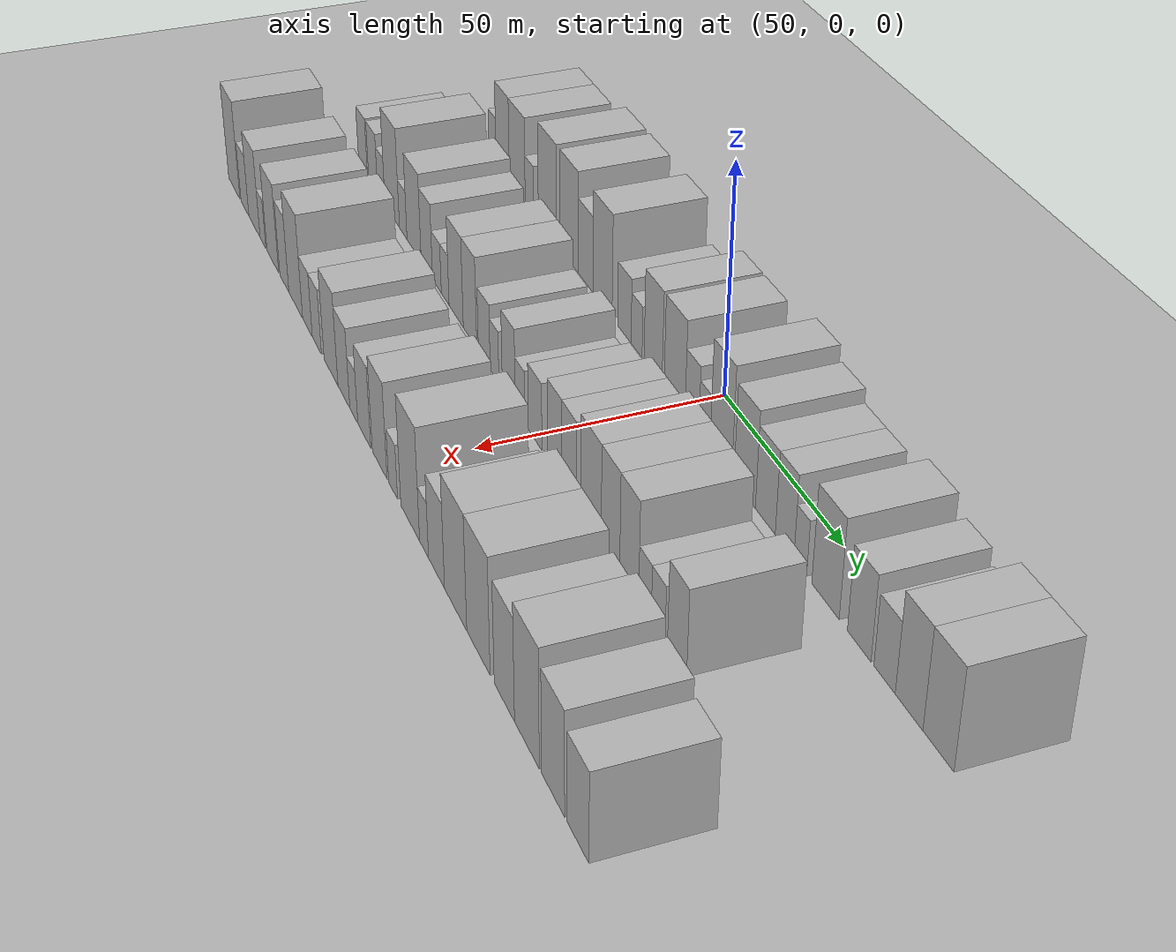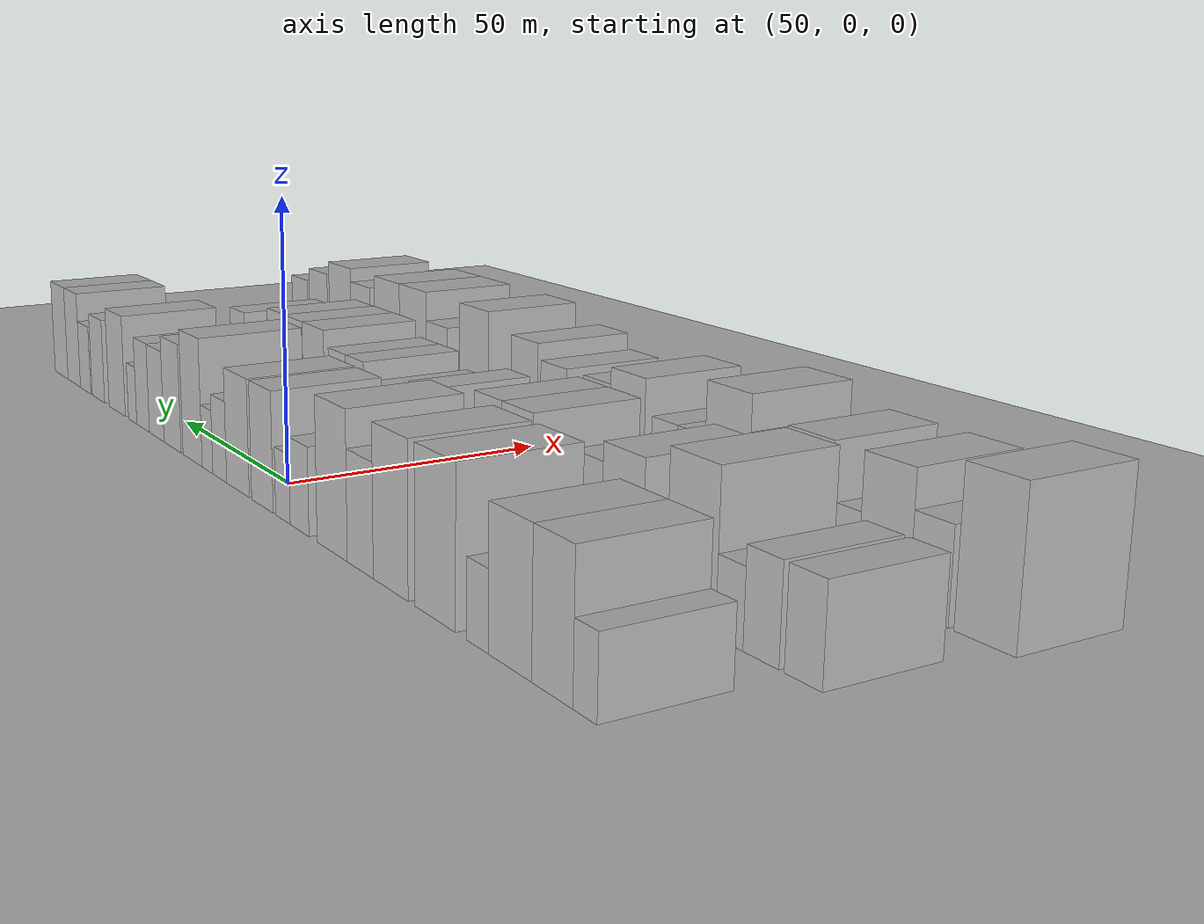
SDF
<sdf version="1.6">
 <world name="default">
  <include><name>ground_plane_1</name><uri>model://HANNAS_ground_plane</uri></include>
  <include>
   <name>ground_plane_2</name>
   <uri>model://HANNAS_ground_plane</uri>
   <pose>100 0 0  0 0 0</pose>
  </include>
  <model name="building_21">
   <static>1</static>
   <pose>50.0000 -107.4695 0 0.000000 0.000000 0.000000</pose>
   <link name="link">
    <pose>0 0 6.00 0 0 0</pose>
    <collision name="collision"><geometry><box><size>20.0000 5.0677 12.0000</size></box></geometry></collision>
    <visual name="visual">
     <cast_shadows>0</cast_shadows>
     <geometry><box><size>20.0000 5.0677 12.0000</size></box></geometry>
     <material>
      <script>
       <uri>model://HANNAS_wall/materials/scripts</uri>
       <uri>model://HANNAS_wall/materials/textures</uri>
       <name>vrc/HANNAS_wall</name>
      </script>
     </material>
    </visual>
   </link>
  </model>
  <model name="building_22">
   <static>1</static>
   <pose>50.0000 -100.3512 0 0.000000 0.000000 0.000000</pose>
   <link name="link">
    <pose>0 0 10.50 0 0 0</pose>
    <collision name="collision"><geometry><box><size>20.0000 9.1690 21.0000</size></box></geometry></collision>
    <visual name="visual">
     <cast_shadows>0</cast_shadows>
     <geometry><box><size>20.0000 9.1690 21.0000</size></box></geometry>
     <material>
      <script>
       <uri>model://HANNAS_wall/materials/scripts</uri>
       <uri>model://HANNAS_wall/materials/textures</uri>
       <name>vrc/HANNAS_wall</name>
      </script>
     </material>
    </visual>
   </link>
  </model>
  <model name="building_23">
   <static>1</static>
   <pose>50.0000 -90.5376 0 0.000000 0.000000 0.000000</pose>
   <link name="link">
    <pose>0 0 10.50 0 0 0</pose>
    <collision name="collision"><geometry><box><size>20.0000 10.4582 21.0000</size></box></geometry></collision>
    <visual name="visual">
     <cast_shadows>0</cast_shadows>
     <geometry><box><size>20.0000 10.4582 21.0000</size></box></geometry>
     <material>
      <script>
       <uri>model://HANNAS_wall/materials/scripts</uri>
       <uri>model://HANNAS_wall/materials/textures</uri>
       <name>vrc/HANNAS_wall</name>
      </script>
     </material>
    </visual>
   </link>
  </model>
  <model name="building_24">
   <static>1</static>
   <pose>50.0000 -82.5647 0 0.000000 0.000000 0.000000</pose>
   <link name="link">
    <pose>0 0 6.00 0 0 0</pose>
    <collision name="collision"><geometry><box><size>20.0000 5.4877 12.0000</size></box></geometry></collision>
    <visual name="visual">
     <cast_shadows>0</cast_shadows>
     <geometry><box><size>20.0000 5.4877 12.0000</size></box></geometry>
     <material>
      <script>
       <uri>model://HANNAS_wall/materials/scripts</uri>
       <uri>model://HANNAS_wall/materials/textures</uri>
       <name>vrc/HANNAS_wall</name>
      </script>
     </material>
    </visual>
   </link>
  </model>
  <model name="building_25">
   <static>1</static>
   <pose>50.0000 -71.1308 0 0.000000 0.000000 0.000000</pose>
   <link name="link">
    <pose>0 0 12.00 0 0 0</pose>
    <collision name="collision"><geometry><box><size>20.0000 11.3801 24.0000</size></box></geometry></collision>
    <visual name="visual">
     <cast_shadows>0</cast_shadows>
     <geometry><box><size>20.0000 11.3801 24.0000</size></box></geometry>
     <material>
      <script>
       <uri>model://HANNAS_wall/materials/scripts</uri>
       <uri>model://HANNAS_wall/materials/textures</uri>
       <name>vrc/HANNAS_wall</name>
      </script>
     </material>
    </visual>
   </link>
  </model>
  <model name="building_26">
   <static>1</static>
   <pose>50.0000 -58.0494 0 0.000000 0.000000 0.000000</pose>
   <link name="link">
    <pose>0 0 12.00 0 0 0</pose>
    <collision name="collision"><geometry><box><size>20.0000 10.7825 24.0000</size></box></geometry></collision>
    <visual name="visual">
     <cast_shadows>0</cast_shadows>
     <geometry><box><size>20.0000 10.7825 24.0000</size></box></geometry>
     <material>
      <script>
       <uri>model://HANNAS_wall/materials/scripts</uri>
       <uri>model://HANNAS_wall/materials/textures</uri>
       <name>vrc/HANNAS_wall</name>
      </script>
     </material>
    </visual>
   </link>
  </model>
  <model name="building_27">
   <static>1</static>
   <pose>50.0000 -48.3660 0 0.000000 0.000000 0.000000</pose>
   <link name="link">
    <pose>0 0 9.00 0 0 0</pose>
    <collision name="collision"><geometry><box><size>20.0000 8.5843 18.0000</size></box></geometry></collision>
    <visual name="visual">
     <cast_shadows>0</cast_shadows>
     <geometry><box><size>20.0000 8.5843 18.0000</size></box></geometry>
     <material>
      <script>
       <uri>model://HANNAS_wall/materials/scripts</uri>
       <uri>model://HANNAS_wall/materials/textures</uri>
       <name>vrc/HANNAS_wall</name>
      </script>
     </material>
    </visual>
   </link>
  </model>
  <model name="building_28">
   <static>1</static>
   <pose>50.0000 -38.7281 0 0.000000 0.000000 0.000000</pose>
   <link name="link">
    <pose>0 0 12.00 0 0 0</pose>
    <collision name="collision"><geometry><box><size>20.0000 10.6915 24.0000</size></box></geometry></collision>
    <visual name="visual">
     <cast_shadows>0</cast_shadows>
     <geometry><box><size>20.0000 10.6915 24.0000</size></box></geometry>
     <material>
      <script>
       <uri>model://HANNAS_wall/materials/scripts</uri>
       <uri>model://HANNAS_wall/materials/textures</uri>
       <name>vrc/HANNAS_wall</name>
      </script>
     </material>
    </visual>
   </link>
  </model>
  <model name="building_29">
   <static>1</static>
   <pose>50.0000 -26.8034 0 0.000000 0.000000 0.000000</pose>
   <link name="link">
    <pose>0 0 7.50 0 0 0</pose>
    <collision name="collision"><geometry><box><size>20.0000 7.1579 15.0000</size></box></geometry></collision>
    <visual name="visual">
     <cast_shadows>0</cast_shadows>
     <geometry><box><size>20.0000 7.1579 15.0000</size></box></geometry>
     <material>
      <script>
       <uri>model://HANNAS_wall/materials/scripts</uri>
       <uri>model://HANNAS_wall/materials/textures</uri>
       <name>vrc/HANNAS_wall</name>
      </script>
     </material>
    </visual>
   </link>
  </model>
  <model name="building_30">
   <static>1</static>
   <pose>50.0000 -20.3374 0 0.000000 0.000000 0.000000</pose>
   <link name="link">
    <pose>0 0 6.00 0 0 0</pose>
    <collision name="collision"><geometry><box><size>20.0000 5.7741 12.0000</size></box></geometry></collision>
    <visual name="visual">
     <cast_shadows>0</cast_shadows>
     <geometry><box><size>20.0000 5.7741 12.0000</size></box></geometry>
     <material>
      <script>
       <uri>model://HANNAS_wall/materials/scripts</uri>
       <uri>model://HANNAS_wall/materials/textures</uri>
       <name>vrc/HANNAS_wall</name>
      </script>
     </material>
    </visual>
   </link>
  </model>
  <model name="building_31">
   <static>1</static>
   <pose>50.0000 -11.9085 0 0.000000 0.000000 0.000000</pose>
   <link name="link">
    <pose>0 0 10.50 0 0 0</pose>
    <collision name="collision"><geometry><box><size>20.0000 9.0835 21.0000</size></box></geometry></collision>
    <visual name="visual">
     <cast_shadows>0</cast_shadows>
     <geometry><box><size>20.0000 9.0835 21.0000</size></box></geometry>
     <material>
      <script>
       <uri>model://HANNAS_wall/materials/scripts</uri>
       <uri>model://HANNAS_wall/materials/textures</uri>
       <name>vrc/HANNAS_wall</name>
      </script>
     </material>
    </visual>
   </link>
  </model>
  <model name="building_32">
   <static>1</static>
   <pose>50.0000 -1.2948 0 0.000000 0.000000 0.000000</pose>
   <link name="link">
    <pose>0 0 10.50 0 0 0</pose>
    <collision name="collision"><geometry><box><size>20.0000 10.1440 21.0000</size></box></geometry></collision>
    <visual name="visual">
     <cast_shadows>0</cast_shadows>
     <geometry><box><size>20.0000 10.1440 21.0000</size></box></geometry>
     <material>
      <script>
       <uri>model://HANNAS_wall/materials/scripts</uri>
       <uri>model://HANNAS_wall/materials/textures</uri>
       <name>vrc/HANNAS_wall</name>
      </script>
     </material>
    </visual>
   </link>
  </model>
  <model name="building_33">
   <static>1</static>
   <pose>50.0000 7.0367 0 0.000000 0.000000 0.000000</pose>
   <link name="link">
    <pose>0 0 7.50 0 0 0</pose>
    <collision name="collision"><geometry><box><size>20.0000 6.5191 15.0000</size></box></geometry></collision>
    <visual name="visual">
     <cast_shadows>0</cast_shadows>
     <geometry><box><size>20.0000 6.5191 15.0000</size></box></geometry>
     <material>
      <script>
       <uri>model://HANNAS_wall/materials/scripts</uri>
       <uri>model://HANNAS_wall/materials/textures</uri>
       <name>vrc/HANNAS_wall</name>
      </script>
     </material>
    </visual>
   </link>
  </model>
  <model name="building_34">
   <static>1</static>
   <pose>50.0000 12.8875 0 0.000000 0.000000 0.000000</pose>
   <link name="link">
    <pose>0 0 6.00 0 0 0</pose>
    <collision name="collision"><geometry><box><size>20.0000 5.1826 12.0000</size></box></geometry></collision>
    <visual name="visual">
     <cast_shadows>0</cast_shadows>
     <geometry><box><size>20.0000 5.1826 12.0000</size></box></geometry>
     <material>
      <script>
       <uri>model://HANNAS_wall/materials/scripts</uri>
       <uri>model://HANNAS_wall/materials/textures</uri>
       <name>vrc/HANNAS_wall</name>
      </script>
     </material>
    </visual>
   </link>
  </model>
  <model name="building_35">
   <static>1</static>
   <pose>50.0000 20.3388 0 0.000000 0.000000 0.000000</pose>
   <link name="link">
    <pose>0 0 12.00 0 0 0</pose>
    <collision name="collision"><geometry><box><size>20.0000 9.7201 24.0000</size></box></geometry></collision>
    <visual name="visual">
     <cast_shadows>0</cast_shadows>
     <geometry><box><size>20.0000 9.7201 24.0000</size></box></geometry>
     <material>
      <script>
       <uri>model://HANNAS_wall/materials/scripts</uri>
       <uri>model://HANNAS_wall/materials/textures</uri>
       <name>vrc/HANNAS_wall</name>
      </script>
     </material>
    </visual>
   </link>
  </model>
  <model name="building_36">
   <static>1</static>
   <pose>50.0000 30.7863 0 0.000000 0.000000 0.000000</pose>
   <link name="link">
    <pose>0 0 10.50 0 0 0</pose>
    <collision name="collision"><geometry><box><size>20.0000 9.1749 21.0000</size></box></geometry></collision>
    <visual name="visual">
     <cast_shadows>0</cast_shadows>
     <geometry><box><size>20.0000 9.1749 21.0000</size></box></geometry>
     <material>
      <script>
       <uri>model://HANNAS_wall/materials/scripts</uri>
       <uri>model://HANNAS_wall/materials/textures</uri>
       <name>vrc/HANNAS_wall</name>
      </script>
     </material>
    </visual>
   </link>
  </model>
  <model name="building_37">
   <static>1</static>
   <pose>50.0000 39.4990 0 0.000000 0.000000 0.000000</pose>
   <link name="link">
    <pose>0 0 9.00 0 0 0</pose>
    <collision name="collision"><geometry><box><size>20.0000 8.2504 18.0000</size></box></geometry></collision>
    <visual name="visual">
     <cast_shadows>0</cast_shadows>
     <geometry><box><size>20.0000 8.2504 18.0000</size></box></geometry>
     <material>
      <script>
       <uri>model://HANNAS_wall/materials/scripts</uri>
       <uri>model://HANNAS_wall/materials/textures</uri>
       <name>vrc/HANNAS_wall</name>
      </script>
     </material>
    </visual>
   </link>
  </model>
  <model name="building_38">
   <static>1</static>
   <pose>50.0000 47.3485 0 0.000000 0.000000 0.000000</pose>
   <link name="link">
    <pose>0 0 9.00 0 0 0</pose>
    <collision name="collision"><geometry><box><size>20.0000 7.4485 18.0000</size></box></geometry></collision>
    <visual name="visual">
     <cast_shadows>0</cast_shadows>
     <geometry><box><size>20.0000 7.4485 18.0000</size></box></geometry>
     <material>
      <script>
       <uri>model://HANNAS_wall/materials/scripts</uri>
       <uri>model://HANNAS_wall/materials/textures</uri>
       <name>vrc/HANNAS_wall</name>
      </script>
     </material>
    </visual>
   </link>
  </model>
  <model name="building_39">
   <static>1</static>
   <pose>50.0000 53.5620 0 0.000000 0.000000 0.000000</pose>
   <link name="link">
    <pose>0 0 6.00 0 0 0</pose>
    <collision name="collision"><geometry><box><size>20.0000 4.9785 12.0000</size></box></geometry></collision>
    <visual name="visual">
     <cast_shadows>0</cast_shadows>
     <geometry><box><size>20.0000 4.9785 12.0000</size></box></geometry>
     <material>
      <script>
       <uri>model://HANNAS_wall/materials/scripts</uri>
       <uri>model://HANNAS_wall/materials/textures</uri>
       <name>vrc/HANNAS_wall</name>
      </script>
     </material>
    </visual>
   </link>
  </model>
  <model name="building_40">
   <static>1</static>
   <pose>50.0000 63.1879 0 0.000000 0.000000 0.000000</pose>
   <link name="link">
    <pose>0 0 10.50 0 0 0</pose>
    <collision name="collision"><geometry><box><size>20.0000 10.2733 21.0000</size></box></geometry></collision>
    <visual name="visual">
     <cast_shadows>0</cast_shadows>
     <geometry><box><size>20.0000 10.2733 21.0000</size></box></geometry>
     <material>
      <script>
       <uri>model://HANNAS_wall/materials/scripts</uri>
       <uri>model://HANNAS_wall/materials/textures</uri>
       <name>vrc/HANNAS_wall</name>
      </script>
     </material>
    </visual>
   </link>
  </model>
  <model name="building_41">
   <static>1</static>
   <pose>50.0000 75.5066 0 0.000000 0.000000 0.000000</pose>
   <link name="link">
    <pose>0 0 9.00 0 0 0</pose>
    <collision name="collision"><geometry><box><size>20.0000 8.3643 18.0000</size></box></geometry></collision>
    <visual name="visual">
     <cast_shadows>0</cast_shadows>
     <geometry><box><size>20.0000 8.3643 18.0000</size></box></geometry>
     <material>
      <script>
       <uri>model://HANNAS_wall/materials/scripts</uri>
       <uri>model://HANNAS_wall/materials/textures</uri>
       <name>vrc/HANNAS_wall</name>
      </script>
     </material>
    </visual>
   </link>
  </model>
  <model name="building_42">
   <static>1</static>
   <pose>50.0000 84.3368 0 0.000000 0.000000 0.000000</pose>
   <link name="link">
    <pose>0 0 7.50 0 0 0</pose>
    <collision name="collision"><geometry><box><size>20.0000 7.2960 15.0000</size></box></geometry></collision>
    <visual name="visual">
     <cast_shadows>0</cast_shadows>
     <geometry><box><size>20.0000 7.2960 15.0000</size></box></geometry>
     <material>
      <script>
       <uri>model://HANNAS_wall/materials/scripts</uri>
       <uri>model://HANNAS_wall/materials/textures</uri>
       <name>vrc/HANNAS_wall</name>
      </script>
     </material>
    </visual>
   </link>
  </model>
  <model name="building_43">
   <static>1</static>
   <pose>50.0000 92.5315 0 0.000000 0.000000 0.000000</pose>
   <link name="link">
    <pose>0 0 10.50 0 0 0</pose>
    <collision name="collision"><geometry><box><size>20.0000 9.0934 21.0000</size></box></geometry></collision>
    <visual name="visual">
     <cast_shadows>0</cast_shadows>
     <geometry><box><size>20.0000 9.0934 21.0000</size></box></geometry>
     <material>
      <script>
       <uri>model://HANNAS_wall/materials/scripts</uri>
       <uri>model://HANNAS_wall/materials/textures</uri>
       <name>vrc/HANNAS_wall</name>
      </script>
     </material>
    </visual>
   </link>
  </model>
  <model name="building_44">
   <static>1</static>
   <pose>50.0000 101.9800 0 0.000000 0.000000 0.000000</pose>
   <link name="link">
    <pose>0 0 10.50 0 0 0</pose>
    <collision name="collision"><geometry><box><size>20.0000 9.8036 21.0000</size></box></geometry></collision>
    <visual name="visual">
     <cast_shadows>0</cast_shadows>
     <geometry><box><size>20.0000 9.8036 21.0000</size></box></geometry>
     <material>
      <script>
       <uri>model://HANNAS_wall/materials/scripts</uri>
       <uri>model://HANNAS_wall/materials/textures</uri>
       <name>vrc/HANNAS_wall</name>
      </script>
     </material>
    </visual>
   </link>
  </model>
  <model name="building_95">
   <static>1</static>
   <pose>79.0000 -112.1985 0 0.000000 0.000000 0.000000</pose>
   <link name="link">
    <pose>0 0 7.50 0 0 0</pose>
    <collision name="collision"><geometry><box><size>20.0000 7.0223 15.0000</size></box></geometry></collision>
    <visual name="visual">
     <cast_shadows>0</cast_shadows>
     <geometry><box><size>20.0000 7.0223 15.0000</size></box></geometry>
     <material>
      <script>
       <uri>model://HANNAS_wall/materials/scripts</uri>
       <uri>model://HANNAS_wall/materials/textures</uri>
       <name>vrc/HANNAS_wall</name>
      </script>
     </material>
    </visual>
   </link>
  </model>
  <model name="building_96">
   <static>1</static>
   <pose>79.0000 -104.1582 0 0.000000 0.000000 0.000000</pose>
   <link name="link">
    <pose>0 0 7.50 0 0 0</pose>
    <collision name="collision"><geometry><box><size>20.0000 7.0582 15.0000</size></box></geometry></collision>
    <visual name="visual">
     <cast_shadows>0</cast_shadows>
     <geometry><box><size>20.0000 7.0582 15.0000</size></box></geometry>
     <material>
      <script>
       <uri>model://HANNAS_wall/materials/scripts</uri>
       <uri>model://HANNAS_wall/materials/textures</uri>
       <name>vrc/HANNAS_wall</name>
      </script>
     </material>
    </visual>
   </link>
  </model>
  <model name="building_97">
   <static>1</static>
   <pose>79.0000 -97.8102 0 0.000000 0.000000 0.000000</pose>
   <link name="link">
    <pose>0 0 6.00 0 0 0</pose>
    <collision name="collision"><geometry><box><size>20.0000 5.6377 12.0000</size></box></geometry></collision>
    <visual name="visual">
     <cast_shadows>0</cast_shadows>
     <geometry><box><size>20.0000 5.6377 12.0000</size></box></geometry>
     <material>
      <script>
       <uri>model://HANNAS_wall/materials/scripts</uri>
       <uri>model://HANNAS_wall/materials/textures</uri>
       <name>vrc/HANNAS_wall</name>
      </script>
     </material>
    </visual>
   </link>
  </model>
  <model name="building_98">
   <static>1</static>
   <pose>79.0000 -89.5477 0 0.000000 0.000000 0.000000</pose>
   <link name="link">
    <pose>0 0 12.00 0 0 0</pose>
    <collision name="collision"><geometry><box><size>20.0000 10.8873 24.0000</size></box></geometry></collision>
    <visual name="visual">
     <cast_shadows>0</cast_shadows>
     <geometry><box><size>20.0000 10.8873 24.0000</size></box></geometry>
     <material>
      <script>
       <uri>model://HANNAS_wall/materials/scripts</uri>
       <uri>model://HANNAS_wall/materials/textures</uri>
       <name>vrc/HANNAS_wall</name>
      </script>
     </material>
    </visual>
   </link>
  </model>
  <model name="building_99">
   <static>1</static>
   <pose>79.0000 -81.3429 0 0.000000 0.000000 0.000000</pose>
   <link name="link">
    <pose>0 0 6.00 0 0 0</pose>
    <collision name="collision"><geometry><box><size>20.0000 5.5224 12.0000</size></box></geometry></collision>
    <visual name="visual">
     <cast_shadows>0</cast_shadows>
     <geometry><box><size>20.0000 5.5224 12.0000</size></box></geometry>
     <material>
      <script>
       <uri>model://HANNAS_wall/materials/scripts</uri>
       <uri>model://HANNAS_wall/materials/textures</uri>
       <name>vrc/HANNAS_wall</name>
      </script>
     </material>
    </visual>
   </link>
  </model>
  <model name="building_100">
   <static>1</static>
   <pose>79.0000 -73.5004 0 0.000000 0.000000 0.000000</pose>
   <link name="link">
    <pose>0 0 10.50 0 0 0</pose>
    <collision name="collision"><geometry><box><size>20.0000 10.1625 21.0000</size></box></geometry></collision>
    <visual name="visual">
     <cast_shadows>0</cast_shadows>
     <geometry><box><size>20.0000 10.1625 21.0000</size></box></geometry>
     <material>
      <script>
       <uri>model://HANNAS_wall/materials/scripts</uri>
       <uri>model://HANNAS_wall/materials/textures</uri>
       <name>vrc/HANNAS_wall</name>
      </script>
     </material>
    </visual>
   </link>
  </model>
  <model name="building_101">
   <static>1</static>
   <pose>79.0000 -64.4863 0 0.000000 0.000000 0.000000</pose>
   <link name="link">
    <pose>0 0 9.00 0 0 0</pose>
    <collision name="collision"><geometry><box><size>20.0000 7.8658 18.0000</size></box></geometry></collision>
    <visual name="visual">
     <cast_shadows>0</cast_shadows>
     <geometry><box><size>20.0000 7.8658 18.0000</size></box></geometry>
     <material>
      <script>
       <uri>model://HANNAS_wall/materials/scripts</uri>
       <uri>model://HANNAS_wall/materials/textures</uri>
       <name>vrc/HANNAS_wall</name>
      </script>
     </material>
    </visual>
   </link>
  </model>
  <model name="building_102">
   <static>1</static>
   <pose>79.0000 -57.6087 0 0.000000 0.000000 0.000000</pose>
   <link name="link">
    <pose>0 0 6.00 0 0 0</pose>
    <collision name="collision"><geometry><box><size>20.0000 5.8895 12.0000</size></box></geometry></collision>
    <visual name="visual">
     <cast_shadows>0</cast_shadows>
     <geometry><box><size>20.0000 5.8895 12.0000</size></box></geometry>
     <material>
      <script>
       <uri>model://HANNAS_wall/materials/scripts</uri>
       <uri>model://HANNAS_wall/materials/textures</uri>
       <name>vrc/HANNAS_wall</name>
      </script>
     </material>
    </visual>
   </link>
  </model>
  <model name="building_103">
   <static>1</static>
   <pose>79.0000 -52.1022 0 0.000000 0.000000 0.000000</pose>
   <link name="link">
    <pose>0 0 6.00 0 0 0</pose>
    <collision name="collision"><geometry><box><size>20.0000 5.1234 12.0000</size></box></geometry></collision>
    <visual name="visual">
     <cast_shadows>0</cast_shadows>
     <geometry><box><size>20.0000 5.1234 12.0000</size></box></geometry>
     <material>
      <script>
       <uri>model://HANNAS_wall/materials/scripts</uri>
       <uri>model://HANNAS_wall/materials/textures</uri>
       <name>vrc/HANNAS_wall</name>
      </script>
     </material>
    </visual>
   </link>
  </model>
  <model name="building_104">
   <static>1</static>
   <pose>79.0000 -44.9407 0 0.000000 0.000000 0.000000</pose>
   <link name="link">
    <pose>0 0 10.50 0 0 0</pose>
    <collision name="collision"><geometry><box><size>20.0000 9.1995 21.0000</size></box></geometry></collision>
    <visual name="visual">
     <cast_shadows>0</cast_shadows>
     <geometry><box><size>20.0000 9.1995 21.0000</size></box></geometry>
     <material>
      <script>
       <uri>model://HANNAS_wall/materials/scripts</uri>
       <uri>model://HANNAS_wall/materials/textures</uri>
       <name>vrc/HANNAS_wall</name>
      </script>
     </material>
    </visual>
   </link>
  </model>
  <model name="building_105">
   <static>1</static>
   <pose>79.0000 -36.1029 0 0.000000 0.000000 0.000000</pose>
   <link name="link">
    <pose>0 0 10.50 0 0 0</pose>
    <collision name="collision"><geometry><box><size>20.0000 8.4762 21.0000</size></box></geometry></collision>
    <visual name="visual">
     <cast_shadows>0</cast_shadows>
     <geometry><box><size>20.0000 8.4762 21.0000</size></box></geometry>
     <material>
      <script>
       <uri>model://HANNAS_wall/materials/scripts</uri>
       <uri>model://HANNAS_wall/materials/textures</uri>
       <name>vrc/HANNAS_wall</name>
      </script>
     </material>
    </visual>
   </link>
  </model>
  <model name="building_106">
   <static>1</static>
   <pose>79.0000 -27.3061 0 0.000000 0.000000 0.000000</pose>
   <link name="link">
    <pose>0 0 7.50 0 0 0</pose>
    <collision name="collision"><geometry><box><size>20.0000 7.1174 15.0000</size></box></geometry></collision>
    <visual name="visual">
     <cast_shadows>0</cast_shadows>
     <geometry><box><size>20.0000 7.1174 15.0000</size></box></geometry>
     <material>
      <script>
       <uri>model://HANNAS_wall/materials/scripts</uri>
       <uri>model://HANNAS_wall/materials/textures</uri>
       <name>vrc/HANNAS_wall</name>
      </script>
     </material>
    </visual>
   </link>
  </model>
  <model name="building_107">
   <static>1</static>
   <pose>79.0000 -21.1701 0 0.000000 0.000000 0.000000</pose>
   <link name="link">
    <pose>0 0 6.00 0 0 0</pose>
    <collision name="collision"><geometry><box><size>20.0000 5.1546 12.0000</size></box></geometry></collision>
    <visual name="visual">
     <cast_shadows>0</cast_shadows>
     <geometry><box><size>20.0000 5.1546 12.0000</size></box></geometry>
     <material>
      <script>
       <uri>model://HANNAS_wall/materials/scripts</uri>
       <uri>model://HANNAS_wall/materials/textures</uri>
       <name>vrc/HANNAS_wall</name>
      </script>
     </material>
    </visual>
   </link>
  </model>
  <model name="building_108">
   <static>1</static>
   <pose>79.0000 -12.8640 0 0.000000 0.000000 0.000000</pose>
   <link name="link">
    <pose>0 0 9.00 0 0 0</pose>
    <collision name="collision"><geometry><box><size>20.0000 7.4575 18.0000</size></box></geometry></collision>
    <visual name="visual">
     <cast_shadows>0</cast_shadows>
     <geometry><box><size>20.0000 7.4575 18.0000</size></box></geometry>
     <material>
      <script>
       <uri>model://HANNAS_wall/materials/scripts</uri>
       <uri>model://HANNAS_wall/materials/textures</uri>
       <name>vrc/HANNAS_wall</name>
      </script>
     </material>
    </visual>
   </link>
  </model>
  <model name="building_109">
   <static>1</static>
   <pose>79.0000 -6.5054 0 0.000000 0.000000 0.000000</pose>
   <link name="link">
    <pose>0 0 6.00 0 0 0</pose>
    <collision name="collision"><geometry><box><size>20.0000 5.2598 12.0000</size></box></geometry></collision>
    <visual name="visual">
     <cast_shadows>0</cast_shadows>
     <geometry><box><size>20.0000 5.2598 12.0000</size></box></geometry>
     <material>
      <script>
       <uri>model://HANNAS_wall/materials/scripts</uri>
       <uri>model://HANNAS_wall/materials/textures</uri>
       <name>vrc/HANNAS_wall</name>
      </script>
     </material>
    </visual>
   </link>
  </model>
  <model name="building_110">
   <static>1</static>
   <pose>79.0000 1.8240 0 0.000000 0.000000 0.000000</pose>
   <link name="link">
    <pose>0 0 7.50 0 0 0</pose>
    <collision name="collision"><geometry><box><size>20.0000 7.3990 15.0000</size></box></geometry></collision>
    <visual name="visual">
     <cast_shadows>0</cast_shadows>
     <geometry><box><size>20.0000 7.3990 15.0000</size></box></geometry>
     <material>
      <script>
       <uri>model://HANNAS_wall/materials/scripts</uri>
       <uri>model://HANNAS_wall/materials/textures</uri>
       <name>vrc/HANNAS_wall</name>
      </script>
     </material>
    </visual>
   </link>
  </model>
  <model name="building_111">
   <static>1</static>
   <pose>79.0000 12.2168 0 0.000000 0.000000 0.000000</pose>
   <link name="link">
    <pose>0 0 9.00 0 0 0</pose>
    <collision name="collision"><geometry><box><size>20.0000 7.3866 18.0000</size></box></geometry></collision>
    <visual name="visual">
     <cast_shadows>0</cast_shadows>
     <geometry><box><size>20.0000 7.3866 18.0000</size></box></geometry>
     <material>
      <script>
       <uri>model://HANNAS_wall/materials/scripts</uri>
       <uri>model://HANNAS_wall/materials/textures</uri>
       <name>vrc/HANNAS_wall</name>
      </script>
     </material>
    </visual>
   </link>
  </model>
  <model name="building_112">
   <static>1</static>
   <pose>79.0000 19.7030 0 0.000000 0.000000 0.000000</pose>
   <link name="link">
    <pose>0 0 9.00 0 0 0</pose>
    <collision name="collision"><geometry><box><size>20.0000 7.5858 18.0000</size></box></geometry></collision>
    <visual name="visual">
     <cast_shadows>0</cast_shadows>
     <geometry><box><size>20.0000 7.5858 18.0000</size></box></geometry>
     <material>
      <script>
       <uri>model://HANNAS_wall/materials/scripts</uri>
       <uri>model://HANNAS_wall/materials/textures</uri>
       <name>vrc/HANNAS_wall</name>
      </script>
     </material>
    </visual>
   </link>
  </model>
  <model name="building_113">
   <static>1</static>
   <pose>79.0000 30.4087 0 0.000000 0.000000 0.000000</pose>
   <link name="link">
    <pose>0 0 10.50 0 0 0</pose>
    <collision name="collision"><geometry><box><size>20.0000 9.8256 21.0000</size></box></geometry></collision>
    <visual name="visual">
     <cast_shadows>0</cast_shadows>
     <geometry><box><size>20.0000 9.8256 21.0000</size></box></geometry>
     <material>
      <script>
       <uri>model://HANNAS_wall/materials/scripts</uri>
       <uri>model://HANNAS_wall/materials/textures</uri>
       <name>vrc/HANNAS_wall</name>
      </script>
     </material>
    </visual>
   </link>
  </model>
  <model name="building_114">
   <static>1</static>
   <pose>79.0000 39.6394 0 0.000000 0.000000 0.000000</pose>
   <link name="link">
    <pose>0 0 10.50 0 0 0</pose>
    <collision name="collision"><geometry><box><size>20.0000 8.6358 21.0000</size></box></geometry></collision>
    <visual name="visual">
     <cast_shadows>0</cast_shadows>
     <geometry><box><size>20.0000 8.6358 21.0000</size></box></geometry>
     <material>
      <script>
       <uri>model://HANNAS_wall/materials/scripts</uri>
       <uri>model://HANNAS_wall/materials/textures</uri>
       <name>vrc/HANNAS_wall</name>
      </script>
     </material>
    </visual>
   </link>
  </model>
  <model name="building_115">
   <static>1</static>
   <pose>79.0000 48.2117 0 0.000000 0.000000 0.000000</pose>
   <link name="link">
    <pose>0 0 10.50 0 0 0</pose>
    <collision name="collision"><geometry><box><size>20.0000 8.5088 21.0000</size></box></geometry></collision>
    <visual name="visual">
     <cast_shadows>0</cast_shadows>
     <geometry><box><size>20.0000 8.5088 21.0000</size></box></geometry>
     <material>
      <script>
       <uri>model://HANNAS_wall/materials/scripts</uri>
       <uri>model://HANNAS_wall/materials/textures</uri>
       <name>vrc/HANNAS_wall</name>
      </script>
     </material>
    </visual>
   </link>
  </model>
  <model name="building_116">
   <static>1</static>
   <pose>79.0000 55.2137 0 0.000000 0.000000 0.000000</pose>
   <link name="link">
    <pose>0 0 6.00 0 0 0</pose>
    <collision name="collision"><geometry><box><size>20.0000 5.4953 12.0000</size></box></geometry></collision>
    <visual name="visual">
     <cast_shadows>0</cast_shadows>
     <geometry><box><size>20.0000 5.4953 12.0000</size></box></geometry>
     <material>
      <script>
       <uri>model://HANNAS_wall/materials/scripts</uri>
       <uri>model://HANNAS_wall/materials/textures</uri>
       <name>vrc/HANNAS_wall</name>
      </script>
     </material>
    </visual>
   </link>
  </model>
  <model name="building_117">
   <static>1</static>
   <pose>79.0000 60.8934 0 0.000000 0.000000 0.000000</pose>
   <link name="link">
    <pose>0 0 6.00 0 0 0</pose>
    <collision name="collision"><geometry><box><size>20.0000 5.8640 12.0000</size></box></geometry></collision>
    <visual name="visual">
     <cast_shadows>0</cast_shadows>
     <geometry><box><size>20.0000 5.8640 12.0000</size></box></geometry>
     <material>
      <script>
       <uri>model://HANNAS_wall/materials/scripts</uri>
       <uri>model://HANNAS_wall/materials/textures</uri>
       <name>vrc/HANNAS_wall</name>
      </script>
     </material>
    </visual>
   </link>
  </model>
  <model name="building_118">
   <static>1</static>
   <pose>79.0000 68.7875 0 0.000000 0.000000 0.000000</pose>
   <link name="link">
    <pose>0 0 9.00 0 0 0</pose>
    <collision name="collision"><geometry><box><size>20.0000 7.9242 18.0000</size></box></geometry></collision>
    <visual name="visual">
     <cast_shadows>0</cast_shadows>
     <geometry><box><size>20.0000 7.9242 18.0000</size></box></geometry>
     <material>
      <script>
       <uri>model://HANNAS_wall/materials/scripts</uri>
       <uri>model://HANNAS_wall/materials/textures</uri>
       <name>vrc/HANNAS_wall</name>
      </script>
     </material>
    </visual>
   </link>
  </model>
  <model name="building_170">
   <static>1</static>
   <pose>108.0000 -114.0730 0 0.000000 0.000000 0.000000</pose>
   <link name="link">
    <pose>0 0 12.00 0 0 0</pose>
    <collision name="collision"><geometry><box><size>20.0000 10.6931 24.0000</size></box></geometry></collision>
    <visual name="visual">
     <cast_shadows>0</cast_shadows>
     <geometry><box><size>20.0000 10.6931 24.0000</size></box></geometry>
     <material>
      <script>
       <uri>model://HANNAS_wall/materials/scripts</uri>
       <uri>model://HANNAS_wall/materials/textures</uri>
       <name>vrc/HANNAS_wall</name>
      </script>
     </material>
    </visual>
   </link>
  </model>
  <model name="building_171">
   <static>1</static>
   <pose>108.0000 -104.0670 0 0.000000 0.000000 0.000000</pose>
   <link name="link">
    <pose>0 0 7.50 0 0 0</pose>
    <collision name="collision"><geometry><box><size>20.0000 7.3189 15.0000</size></box></geometry></collision>
    <visual name="visual">
     <cast_shadows>0</cast_shadows>
     <geometry><box><size>20.0000 7.3189 15.0000</size></box></geometry>
     <material>
      <script>
       <uri>model://HANNAS_wall/materials/scripts</uri>
       <uri>model://HANNAS_wall/materials/textures</uri>
       <name>vrc/HANNAS_wall</name>
      </script>
     </material>
    </visual>
   </link>
  </model>
  <model name="building_172">
   <static>1</static>
   <pose>108.0000 -95.3721 0 0.000000 0.000000 0.000000</pose>
   <link name="link">
    <pose>0 0 10.50 0 0 0</pose>
    <collision name="collision"><geometry><box><size>20.0000 10.0708 21.0000</size></box></geometry></collision>
    <visual name="visual">
     <cast_shadows>0</cast_shadows>
     <geometry><box><size>20.0000 10.0708 21.0000</size></box></geometry>
     <material>
      <script>
       <uri>model://HANNAS_wall/materials/scripts</uri>
       <uri>model://HANNAS_wall/materials/textures</uri>
       <name>vrc/HANNAS_wall</name>
      </script>
     </material>
    </visual>
   </link>
  </model>
  <model name="building_173">
   <static>1</static>
   <pose>108.0000 -87.8152 0 0.000000 0.000000 0.000000</pose>
   <link name="link">
    <pose>0 0 6.00 0 0 0</pose>
    <collision name="collision"><geometry><box><size>20.0000 5.0431 12.0000</size></box></geometry></collision>
    <visual name="visual">
     <cast_shadows>0</cast_shadows>
     <geometry><box><size>20.0000 5.0431 12.0000</size></box></geometry>
     <material>
      <script>
       <uri>model://HANNAS_wall/materials/scripts</uri>
       <uri>model://HANNAS_wall/materials/textures</uri>
       <name>vrc/HANNAS_wall</name>
      </script>
     </material>
    </visual>
   </link>
  </model>
  <model name="building_174">
   <static>1</static>
   <pose>108.0000 -79.2925 0 0.000000 0.000000 0.000000</pose>
   <link name="link">
    <pose>0 0 10.50 0 0 0</pose>
    <collision name="collision"><geometry><box><size>20.0000 10.0022 21.0000</size></box></geometry></collision>
    <visual name="visual">
     <cast_shadows>0</cast_shadows>
     <geometry><box><size>20.0000 10.0022 21.0000</size></box></geometry>
     <material>
      <script>
       <uri>model://HANNAS_wall/materials/scripts</uri>
       <uri>model://HANNAS_wall/materials/textures</uri>
       <name>vrc/HANNAS_wall</name>
      </script>
     </material>
    </visual>
   </link>
  </model>
  <model name="building_175">
   <static>1</static>
   <pose>108.0000 -69.5698 0 0.000000 0.000000 0.000000</pose>
   <link name="link">
    <pose>0 0 9.00 0 0 0</pose>
    <collision name="collision"><geometry><box><size>20.0000 7.4431 18.0000</size></box></geometry></collision>
    <visual name="visual">
     <cast_shadows>0</cast_shadows>
     <geometry><box><size>20.0000 7.4431 18.0000</size></box></geometry>
     <material>
      <script>
       <uri>model://HANNAS_wall/materials/scripts</uri>
       <uri>model://HANNAS_wall/materials/textures</uri>
       <name>vrc/HANNAS_wall</name>
      </script>
     </material>
    </visual>
   </link>
  </model>
  <model name="building_176">
   <static>1</static>
   <pose>108.0000 -60.3373 0 0.000000 0.000000 0.000000</pose>
   <link name="link">
    <pose>0 0 12.00 0 0 0</pose>
    <collision name="collision"><geometry><box><size>20.0000 11.0220 24.0000</size></box></geometry></collision>
    <visual name="visual">
     <cast_shadows>0</cast_shadows>
     <geometry><box><size>20.0000 11.0220 24.0000</size></box></geometry>
     <material>
      <script>
       <uri>model://HANNAS_wall/materials/scripts</uri>
       <uri>model://HANNAS_wall/materials/textures</uri>
       <name>vrc/HANNAS_wall</name>
      </script>
     </material>
    </visual>
   </link>
  </model>
  <model name="building_177">
   <static>1</static>
   <pose>108.0000 -51.1199 0 0.000000 0.000000 0.000000</pose>
   <link name="link">
    <pose>0 0 7.50 0 0 0</pose>
    <collision name="collision"><geometry><box><size>20.0000 7.4128 15.0000</size></box></geometry></collision>
    <visual name="visual">
     <cast_shadows>0</cast_shadows>
     <geometry><box><size>20.0000 7.4128 15.0000</size></box></geometry>
     <material>
      <script>
       <uri>model://HANNAS_wall/materials/scripts</uri>
       <uri>model://HANNAS_wall/materials/textures</uri>
       <name>vrc/HANNAS_wall</name>
      </script>
     </material>
    </visual>
   </link>
  </model>
  <model name="building_178">
   <static>1</static>
   <pose>108.0000 -43.9658 0 0.000000 0.000000 0.000000</pose>
   <link name="link">
    <pose>0 0 7.50 0 0 0</pose>
    <collision name="collision"><geometry><box><size>20.0000 6.8954 15.0000</size></box></geometry></collision>
    <visual name="visual">
     <cast_shadows>0</cast_shadows>
     <geometry><box><size>20.0000 6.8954 15.0000</size></box></geometry>
     <material>
      <script>
       <uri>model://HANNAS_wall/materials/scripts</uri>
       <uri>model://HANNAS_wall/materials/textures</uri>
       <name>vrc/HANNAS_wall</name>
      </script>
     </material>
    </visual>
   </link>
  </model>
  <model name="building_179">
   <static>1</static>
   <pose>108.0000 -33.4992 0 0.000000 0.000000 0.000000</pose>
   <link name="link">
    <pose>0 0 10.50 0 0 0</pose>
    <collision name="collision"><geometry><box><size>20.0000 10.0379 21.0000</size></box></geometry></collision>
    <visual name="visual">
     <cast_shadows>0</cast_shadows>
     <geometry><box><size>20.0000 10.0379 21.0000</size></box></geometry>
     <material>
      <script>
       <uri>model://HANNAS_wall/materials/scripts</uri>
       <uri>model://HANNAS_wall/materials/textures</uri>
       <name>vrc/HANNAS_wall</name>
      </script>
     </material>
    </visual>
   </link>
  </model>
  <model name="building_180">
   <static>1</static>
   <pose>108.0000 -24.3318 0 0.000000 0.000000 0.000000</pose>
   <link name="link">
    <pose>0 0 9.00 0 0 0</pose>
    <collision name="collision"><geometry><box><size>20.0000 8.2968 18.0000</size></box></geometry></collision>
    <visual name="visual">
     <cast_shadows>0</cast_shadows>
     <geometry><box><size>20.0000 8.2968 18.0000</size></box></geometry>
     <material>
      <script>
       <uri>model://HANNAS_wall/materials/scripts</uri>
       <uri>model://HANNAS_wall/materials/textures</uri>
       <name>vrc/HANNAS_wall</name>
      </script>
     </material>
    </visual>
   </link>
  </model>
  <model name="building_181">
   <static>1</static>
   <pose>108.0000 -17.4586 0 0.000000 0.000000 0.000000</pose>
   <link name="link">
    <pose>0 0 6.00 0 0 0</pose>
    <collision name="collision"><geometry><box><size>20.0000 5.4496 12.0000</size></box></geometry></collision>
    <visual name="visual">
     <cast_shadows>0</cast_shadows>
     <geometry><box><size>20.0000 5.4496 12.0000</size></box></geometry>
     <material>
      <script>
       <uri>model://HANNAS_wall/materials/scripts</uri>
       <uri>model://HANNAS_wall/materials/textures</uri>
       <name>vrc/HANNAS_wall</name>
      </script>
     </material>
    </visual>
   </link>
  </model>
  <model name="building_182">
   <static>1</static>
   <pose>108.0000 -10.4220 0 0.000000 0.000000 0.000000</pose>
   <link name="link">
    <pose>0 0 9.00 0 0 0</pose>
    <collision name="collision"><geometry><box><size>20.0000 8.6236 18.0000</size></box></geometry></collision>
    <visual name="visual">
     <cast_shadows>0</cast_shadows>
     <geometry><box><size>20.0000 8.6236 18.0000</size></box></geometry>
     <material>
      <script>
       <uri>model://HANNAS_wall/materials/scripts</uri>
       <uri>model://HANNAS_wall/materials/textures</uri>
       <name>vrc/HANNAS_wall</name>
      </script>
     </material>
    </visual>
   </link>
  </model>
  <model name="building_183">
   <static>1</static>
   <pose>108.0000 -0.4145 0 0.000000 0.000000 0.000000</pose>
   <link name="link">
    <pose>0 0 10.50 0 0 0</pose>
    <collision name="collision"><geometry><box><size>20.0000 9.3914 21.0000</size></box></geometry></collision>
    <visual name="visual">
     <cast_shadows>0</cast_shadows>
     <geometry><box><size>20.0000 9.3914 21.0000</size></box></geometry>
     <material>
      <script>
       <uri>model://HANNAS_wall/materials/scripts</uri>
       <uri>model://HANNAS_wall/materials/textures</uri>
       <name>vrc/HANNAS_wall</name>
      </script>
     </material>
    </visual>
   </link>
  </model>
  <model name="building_184">
   <static>1</static>
   <pose>108.0000 8.0195 0 0.000000 0.000000 0.000000</pose>
   <link name="link">
    <pose>0 0 6.00 0 0 0</pose>
    <collision name="collision"><geometry><box><size>20.0000 5.4766 12.0000</size></box></geometry></collision>
    <visual name="visual">
     <cast_shadows>0</cast_shadows>
     <geometry><box><size>20.0000 5.4766 12.0000</size></box></geometry>
     <material>
      <script>
       <uri>model://HANNAS_wall/materials/scripts</uri>
       <uri>model://HANNAS_wall/materials/textures</uri>
       <name>vrc/HANNAS_wall</name>
      </script>
     </material>
    </visual>
   </link>
  </model>
  <model name="building_185">
   <static>1</static>
   <pose>108.0000 18.3184 0 0.000000 0.000000 0.000000</pose>
   <link name="link">
    <pose>0 0 12.00 0 0 0</pose>
    <collision name="collision"><geometry><box><size>20.0000 11.1212 24.0000</size></box></geometry></collision>
    <visual name="visual">
     <cast_shadows>0</cast_shadows>
     <geometry><box><size>20.0000 11.1212 24.0000</size></box></geometry>
     <material>
      <script>
       <uri>model://HANNAS_wall/materials/scripts</uri>
       <uri>model://HANNAS_wall/materials/textures</uri>
       <name>vrc/HANNAS_wall</name>
      </script>
     </material>
    </visual>
   </link>
  </model>
  <model name="building_186">
   <static>1</static>
   <pose>108.0000 26.4345 0 0.000000 0.000000 0.000000</pose>
   <link name="link">
    <pose>0 0 6.00 0 0 0</pose>
    <collision name="collision"><geometry><box><size>20.0000 5.1110 12.0000</size></box></geometry></collision>
    <visual name="visual">
     <cast_shadows>0</cast_shadows>
     <geometry><box><size>20.0000 5.1110 12.0000</size></box></geometry>
     <material>
      <script>
       <uri>model://HANNAS_wall/materials/scripts</uri>
       <uri>model://HANNAS_wall/materials/textures</uri>
       <name>vrc/HANNAS_wall</name>
      </script>
     </material>
    </visual>
   </link>
  </model>
  <model name="building_187">
   <static>1</static>
   <pose>108.0000 33.4544 0 0.000000 0.000000 0.000000</pose>
   <link name="link">
    <pose>0 0 9.00 0 0 0</pose>
    <collision name="collision"><geometry><box><size>20.0000 8.9288 18.0000</size></box></geometry></collision>
    <visual name="visual">
     <cast_shadows>0</cast_shadows>
     <geometry><box><size>20.0000 8.9288 18.0000</size></box></geometry>
     <material>
      <script>
       <uri>model://HANNAS_wall/materials/scripts</uri>
       <uri>model://HANNAS_wall/materials/textures</uri>
       <name>vrc/HANNAS_wall</name>
      </script>
     </material>
    </visual>
   </link>
  </model>
  <model name="building_188">
   <static>1</static>
   <pose>108.0000 43.8163 0 0.000000 0.000000 0.000000</pose>
   <link name="link">
    <pose>0 0 12.00 0 0 0</pose>
    <collision name="collision"><geometry><box><size>20.0000 11.7948 24.0000</size></box></geometry></collision>
    <visual name="visual">
     <cast_shadows>0</cast_shadows>
     <geometry><box><size>20.0000 11.7948 24.0000</size></box></geometry>
     <material>
      <script>
       <uri>model://HANNAS_wall/materials/scripts</uri>
       <uri>model://HANNAS_wall/materials/textures</uri>
       <name>vrc/HANNAS_wall</name>
      </script>
     </material>
    </visual>
   </link>
  </model>
  <model name="building_189">
   <static>1</static>
   <pose>108.0000 55.6040 0 0.000000 0.000000 0.000000</pose>
   <link name="link">
    <pose>0 0 12.00 0 0 0</pose>
    <collision name="collision"><geometry><box><size>20.0000 11.7806 24.0000</size></box></geometry></collision>
    <visual name="visual">
     <cast_shadows>0</cast_shadows>
     <geometry><box><size>20.0000 11.7806 24.0000</size></box></geometry>
     <material>
      <script>
       <uri>model://HANNAS_wall/materials/scripts</uri>
       <uri>model://HANNAS_wall/materials/textures</uri>
       <name>vrc/HANNAS_wall</name>
      </script>
     </material>
    </visual>
   </link>
  </model>
  <model name="building_190">
   <static>1</static>
   <pose>108.0000 68.3318 0 0.000000 0.000000 0.000000</pose>
   <link name="link">
    <pose>0 0 10.50 0 0 0</pose>
    <collision name="collision"><geometry><box><size>20.0000 9.6750 21.0000</size></box></geometry></collision>
    <visual name="visual">
     <cast_shadows>0</cast_shadows>
     <geometry><box><size>20.0000 9.6750 21.0000</size></box></geometry>
     <material>
      <script>
       <uri>model://HANNAS_wall/materials/scripts</uri>
       <uri>model://HANNAS_wall/materials/textures</uri>
       <name>vrc/HANNAS_wall</name>
      </script>
     </material>
    </visual>
   </link>
  </model>
  <model name="building_191">
   <static>1</static>
   <pose>108.0000 78.8122 0 0.000000 0.000000 0.000000</pose>
   <link name="link">
    <pose>0 0 12.00 0 0 0</pose>
    <collision name="collision"><geometry><box><size>20.0000 11.2858 24.0000</size></box></geometry></collision>
    <visual name="visual">
     <cast_shadows>0</cast_shadows>
     <geometry><box><size>20.0000 11.2858 24.0000</size></box></geometry>
     <material>
      <script>
       <uri>model://HANNAS_wall/materials/scripts</uri>
       <uri>model://HANNAS_wall/materials/textures</uri>
       <name>vrc/HANNAS_wall</name>
      </script>
     </material>
    </visual>
   </link>
  </model>
  <model name="building_192">
   <static>1</static>
   <pose>108.0000 90.3956 0 0.000000 0.000000 0.000000</pose>
   <link name="link">
    <pose>0 0 10.50 0 0 0</pose>
    <collision name="collision"><geometry><box><size>20.0000 9.8811 21.0000</size></box></geometry></collision>
    <visual name="visual">
     <cast_shadows>0</cast_shadows>
     <geometry><box><size>20.0000 9.8811 21.0000</size></box></geometry>
     <material>
      <script>
       <uri>model://HANNAS_wall/materials/scripts</uri>
       <uri>model://HANNAS_wall/materials/textures</uri>
       <name>vrc/HANNAS_wall</name>
      </script>
     </material>
    </visual>
   </link>
  </model>
  <model name="building_193">
   <static>1</static>
   <pose>108.0000 100.8057 0 0.000000 0.000000 0.000000</pose>
   <link name="link">
    <pose>0 0 9.00 0 0 0</pose>
    <collision name="collision"><geometry><box><size>20.0000 8.9390 18.0000</size></box></geometry></collision>
    <visual name="visual">
     <cast_shadows>0</cast_shadows>
     <geometry><box><size>20.0000 8.9390 18.0000</size></box></geometry>
     <material>
      <script>
       <uri>model://HANNAS_wall/materials/scripts</uri>
       <uri>model://HANNAS_wall/materials/textures</uri>
       <name>vrc/HANNAS_wall</name>
      </script>
     </material>
    </visual>
   </link>
  </model>
 </world>
</sdf>
